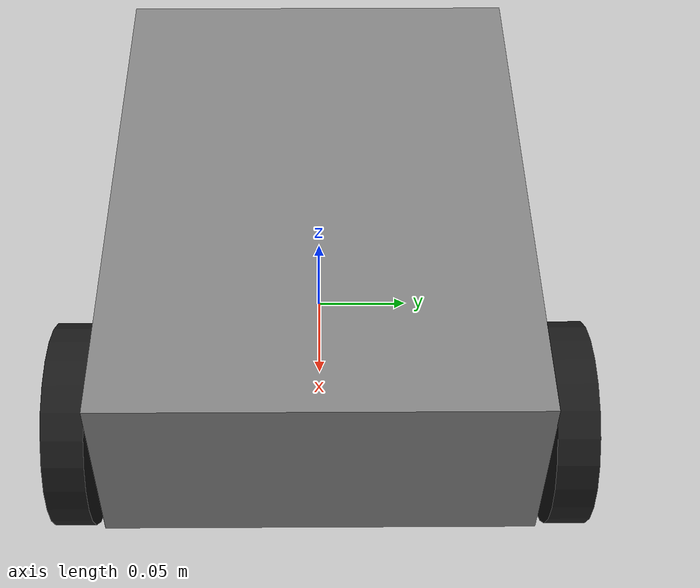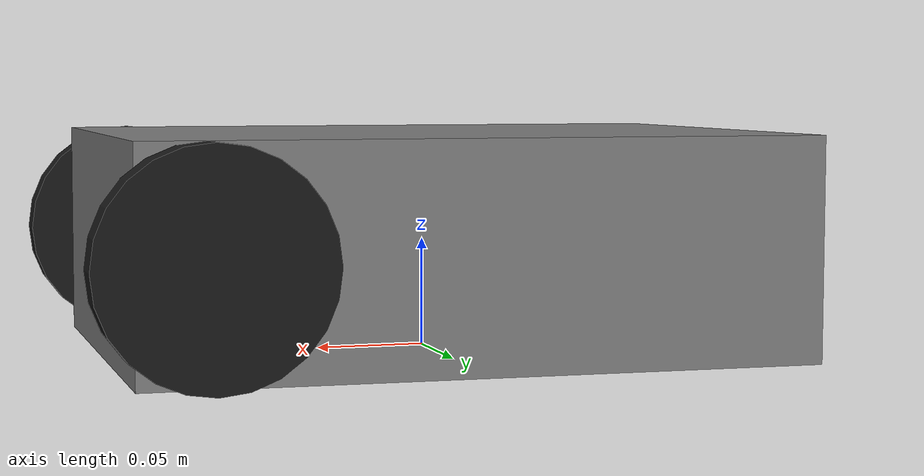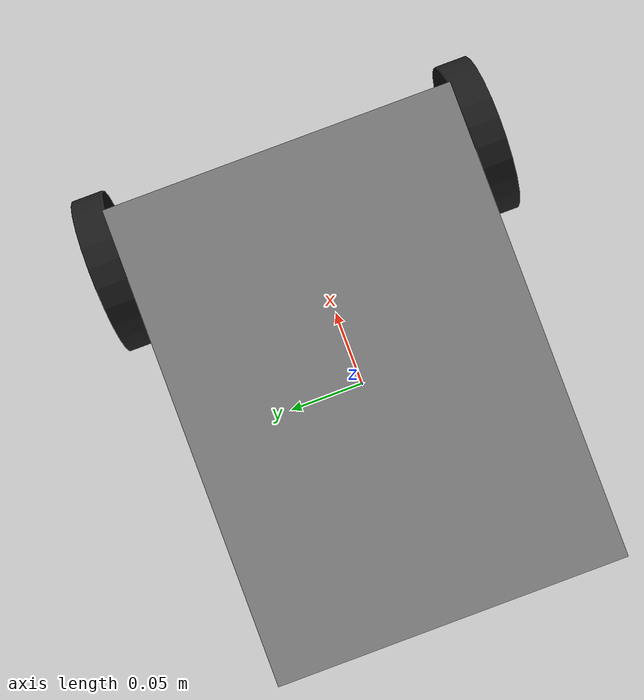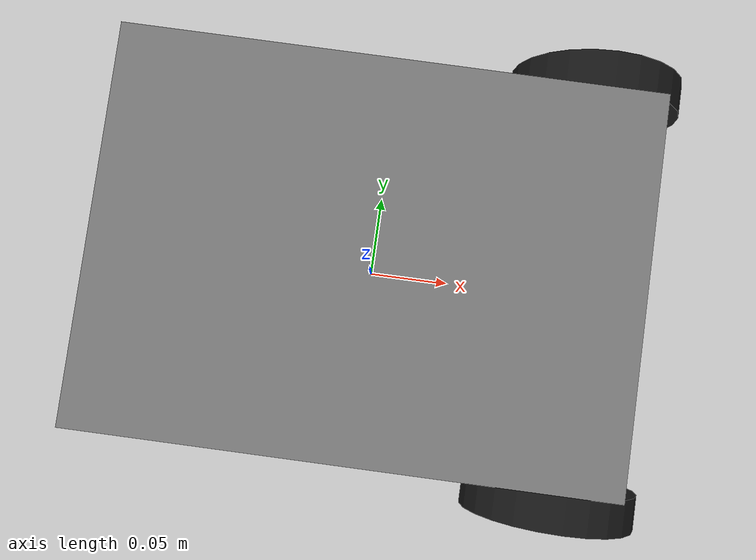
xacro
<?xml version="1.0"?>
<robot xmlns:xacro="http://www.ros.org/wiki/xacro" name="rover">

  <!-- ========= Arguments ========= -->
  <xacro:arg name="use_sim" default="true"/>
  <xacro:arg name="use_ros2_control" default="true"/>

  <!-- ========= Includes ========= -->
  <xacro:include filename="$(find rover_description)/urdf/rover_materials.xacro"/>
  <xacro:include filename="$(find rover_description)/urdf/rover_inertials.xacro"/>
  <xacro:include filename="$(find rover_description)/urdf/rover_core.xacro"/>
  <xacro:include filename="$(find rover_description)/urdf/rover_transmissions.xacro"/>
  <xacro:include filename="$(find rover_description)/urdf/rover_gazebo.xacro"/>

  <!-- ========= Build robot ========= -->
  <xacro:rover_core/>

  <!-- ros2_control hardware/transmissions -->
  <xacro:if value="$(arg use_ros2_control)">
    <xacro:rover_ros2_control/>
  </xacro:if>

  <!-- simulator-specific plugins/tags -->
  <xacro:if value="$(arg use_sim)">
    <xacro:rover_sim_extensions/>
  </xacro:if>

</robot>

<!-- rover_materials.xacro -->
<robot xmlns:xacro="http://www.ros.org/wiki/xacro">

  <material name="mat_black"><color rgba="0.1 0.1 0.1 1.0"/></material>
  <material name="mat_gray"><color rgba="0.5 0.5 0.5 1.0"/></material>
  <material name="mat_orange"><color rgba="0.9 0.4 0.1 1.0"/></material>

</robot>

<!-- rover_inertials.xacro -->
<robot xmlns:xacro="http://www.ros.org/wiki/xacro">

  <!-- Uniform box inertia -->
  <xacro:macro name="inertial_box" params="mass x y z">
    <inertial>
      <mass value="${mass}"/>
      <origin xyz="0 0 0" rpy="0 0 0"/>
      <!-- Ixx = 1/12 m (y^2+z^2) etc -->
      <inertia
        ixx="${(mass/12.0) * (y*y + z*z)}"
        iyy="${(mass/12.0) * (x*x + z*z)}"
        izz="${(mass/12.0) * (x*x + y*y)}"
        ixy="0" ixz="0" iyz="0"/>
    </inertial>
  </xacro:macro>

  <!-- Uniform cylinder inertia (axis = z) -->
  <xacro:macro name="inertial_cylinder_z" params="mass radius length">
    <inertial>
      <mass value="${mass}"/>
      <origin xyz="0 0 0" rpy="0 0 0"/>
      <!-- Izz = 1/2 m r^2, Ixx=Iyy=1/12 m(3r^2 + L^2) -->
      <inertia
        ixx="${(mass/12.0) * (3*radius*radius + length*length)}"
        iyy="${(mass/12.0) * (3*radius*radius + length*length)}"
        izz="${(mass/2.0) * (radius*radius)}"
        ixy="0" ixz="0" iyz="0"/>
    </inertial>
  </xacro:macro>

</robot>

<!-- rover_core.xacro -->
<robot xmlns:xacro="http://www.ros.org/wiki/xacro">

  <xacro:macro name="rover_core" params="">

    <!-- ===== Base Link ===== -->
    <link name="base_link">
      <visual>
        <origin xyz="0 0 0.05" rpy="0 0 0"/>
        <geometry><box size="0.30 0.22 0.10"/></geometry>
        <material name="mat_gray"/>
      </visual>
      <collision>
        <origin xyz="0 0 0.05" rpy="0 0 0"/>
        <geometry><box size="0.30 0.22 0.10"/></geometry>
      </collision>

      <!-- First-pass inertial estimate for simulation bringup; replace with CAD-derived values during dynamics calibration. -->
      <xacro:inertial_box mass="8.0" x="0.30" y="0.22" z="0.10"/>
    </link>

    <!-- ===== Wheel params ===== -->
    <xacro:property name="wheel_radius" value="0.05"/>
    <xacro:property name="wheel_width"  value="0.02"/>
    <xacro:property name="wheel_mass"   value="0.35"/>
    <xacro:property name="wheel_x"      value="0.12"/>
    <xacro:property name="wheel_y"      value="0.12"/>
    <xacro:property name="wheel_z"      value="0.05"/>

    <!-- ===== Left wheel ===== -->
    <link name="wheel_left_link">
      <visual>
        <origin xyz="0 0 0" rpy="1.57079632679 0 0"/>
        <geometry><cylinder radius="${wheel_radius}" length="${wheel_width}"/></geometry>
        <material name="mat_black"/>
      </visual>
      <collision>
        <origin xyz="0 0 0" rpy="1.57079632679 0 0"/>
        <geometry><cylinder radius="${wheel_radius}" length="${wheel_width}"/></geometry>
      </collision>
      <xacro:inertial_cylinder_z mass="${wheel_mass}" radius="${wheel_radius}" length="${wheel_width}"/>
    </link>

    <joint name="wheel_left_joint" type="continuous">
      <parent link="base_link"/>
      <child link="wheel_left_link"/>
      <origin xyz="${wheel_x} ${wheel_y} ${wheel_z}" rpy="0 0 0"/>
      <!-- Wheel rotates about Y for a forward-facing wheel if cylinder axis is along X;
           here we oriented the cylinder via rpy so rotation axis is Y -->
      <axis xyz="0 1 0"/>
      <limit effort="2.0" velocity="20.0"/>
      <dynamics damping="0.0" friction="0.0"/>
    </joint>

    <!-- ===== Right wheel ===== -->
    <link name="wheel_right_link">
      <visual>
        <origin xyz="0 0 0" rpy="1.57079632679 0 0"/>
        <geometry><cylinder radius="${wheel_radius}" length="${wheel_width}"/></geometry>
        <material name="mat_black"/>
      </visual>
      <collision>
        <origin xyz="0 0 0" rpy="1.57079632679 0 0"/>
        <geometry><cylinder radius="${wheel_radius}" length="${wheel_width}"/></geometry>
      </collision>
      <xacro:inertial_cylinder_z mass="${wheel_mass}" radius="${wheel_radius}" length="${wheel_width}"/>
    </link>

    <joint name="wheel_right_joint" type="continuous">
      <parent link="base_link"/>
      <child link="wheel_right_link"/>
      <origin xyz="${wheel_x} ${-wheel_y} ${wheel_z}" rpy="0 0 0"/>
      <axis xyz="0 1 0"/>
      <limit effort="2.0" velocity="20.0"/>
      <dynamics damping="0.0" friction="0.0"/>
    </joint>

  </xacro:macro>

</robot>
